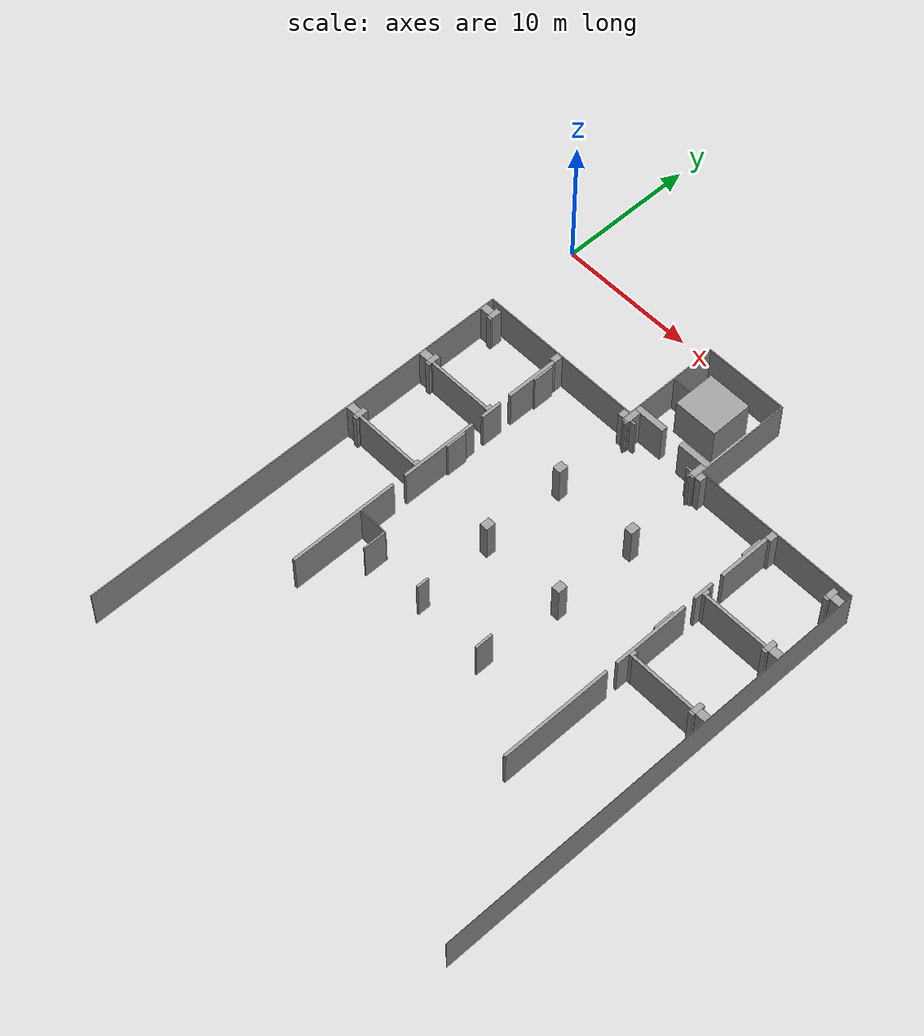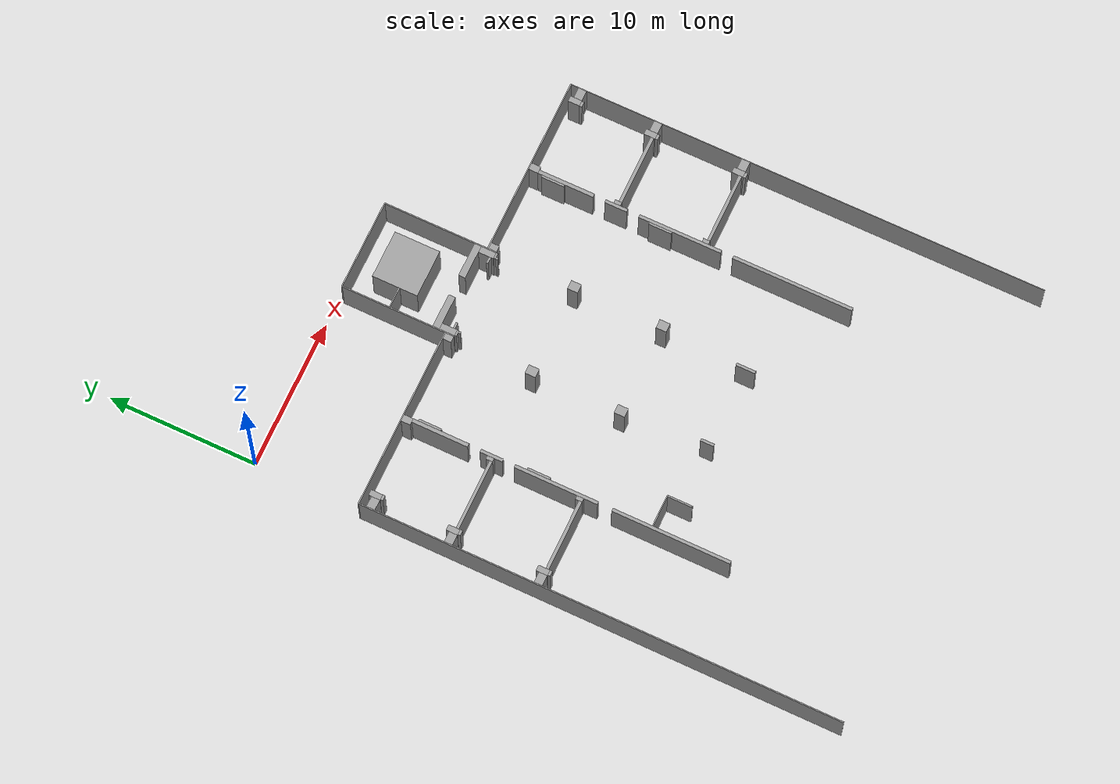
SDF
<sdf version="1.4">
 <model name="Bauman">
  <static>1</static>
  <link name="Wall_0">
   <collision name="Wall_0_Collision">
    <geometry><box><size>6.17750 0.07060 3.00000</size></box></geometry>
    <pose>15.37315 -0.03530 0 0 0 0.00000</pose>
   </collision>
   <visual name="Wall_0_Visual">
    <geometry><box><size>6.17750 0.07060 3.00000</size></box></geometry>
    <material>
     <script><uri>file://media/materials/scripts/gazebo.material</uri><name>Gazebo/Grey</name></script>
    </material>
    <pose>15.37315 -0.03530 0 0 0 0.00000</pose>
   </visual>
  </link>
  <link name="Wall_1">
   <collision name="Wall_1_Collision">
    <geometry><box><size>0.07060 7.69540 3.00000</size></box></geometry>
    <pose>12.31970 -3.91830 0 0 0 0.00000</pose>
   </collision>
   <visual name="Wall_1_Visual">
    <geometry><box><size>0.07060 7.69540 3.00000</size></box></geometry>
    <material>
     <script><uri>file://media/materials/scripts/gazebo.material</uri><name>Gazebo/Grey</name></script>
    </material>
    <pose>12.31970 -3.91830 0 0 0 0.00000</pose>
   </visual>
  </link>
  <link name="Wall_2">
   <collision name="Wall_2_Collision">
    <geometry><box><size>0.07060 7.69540 3.00000</size></box></geometry>
    <pose>18.42660 -3.91830 0 0 0 0.00000</pose>
   </collision>
   <visual name="Wall_2_Visual">
    <geometry><box><size>0.07060 7.69540 3.00000</size></box></geometry>
    <material>
     <script><uri>file://media/materials/scripts/gazebo.material</uri><name>Gazebo/Grey</name></script>
    </material>
    <pose>18.42660 -3.91830 0 0 0 0.00000</pose>
   </visual>
  </link>
  <link name="Wall_3">
   <collision name="Wall_3_Collision">
    <geometry><box><size>3.24760 3.10640 3.00000</size></box></geometry>
    <pose>15.35550 -3.00050 0 0 0 0.00000</pose>
   </collision>
   <visual name="Wall_3_Visual">
    <geometry><box><size>3.24760 3.10640 3.00000</size></box></geometry>
    <material>
     <script><uri>file://media/materials/scripts/gazebo.material</uri><name>Gazebo/Grey</name></script>
    </material>
    <pose>15.35550 -3.00050 0 0 0 0.00000</pose>
   </visual>
  </link>
  <link name="Wall_4">
   <collision name="Wall_4_Collision">
    <geometry><box><size>1.37670 0.07060 3.00000</size></box></geometry>
    <pose>13.04335 -3.31820 0 0 0 0.00000</pose>
   </collision>
   <visual name="Wall_4_Visual">
    <geometry><box><size>1.37670 0.07060 3.00000</size></box></geometry>
    <material>
     <script><uri>file://media/materials/scripts/gazebo.material</uri><name>Gazebo/Grey</name></script>
    </material>
    <pose>13.04335 -3.31820 0 0 0 0.00000</pose>
   </visual>
  </link>
  <link name="Wall_5">
   <collision name="Wall_5_Collision">
    <geometry><box><size>2.29450 0.45890 3.00000</size></box></geometry>
    <pose>13.50225 -6.51285 0 0 0 0.00000</pose>
   </collision>
   <visual name="Wall_5_Visual">
    <geometry><box><size>2.29450 0.45890 3.00000</size></box></geometry>
    <material>
     <script><uri>file://media/materials/scripts/gazebo.material</uri><name>Gazebo/Grey</name></script>
    </material>
    <pose>13.50225 -6.51285 0 0 0 0.00000</pose>
   </visual>
  </link>
  <link name="Wall_6">
   <collision name="Wall_6_Collision">
    <geometry><box><size>2.32980 0.45890 3.00000</size></box></geometry>
    <pose>17.22640 -6.51285 0 0 0 0.00000</pose>
   </collision>
   <visual name="Wall_6_Visual">
    <geometry><box><size>2.32980 0.45890 3.00000</size></box></geometry>
    <material>
     <script><uri>file://media/materials/scripts/gazebo.material</uri><name>Gazebo/Grey</name></script>
    </material>
    <pose>17.22640 -6.51285 0 0 0 0.00000</pose>
   </visual>
  </link>
  <link name="Wall_7">
   <collision name="Wall_7_Collision">
    <geometry><box><size>0.42360 1.02370 3.00000</size></box></geometry>
    <pose>12.56680 -7.25415 0 0 0 0.00000</pose>
   </collision>
   <visual name="Wall_7_Visual">
    <geometry><box><size>0.42360 1.02370 3.00000</size></box></geometry>
    <material>
     <script><uri>file://media/materials/scripts/gazebo.material</uri><name>Gazebo/Grey</name></script>
    </material>
    <pose>12.56680 -7.25415 0 0 0 0.00000</pose>
   </visual>
  </link>
  <link name="Wall_8">
   <collision name="Wall_8_Collision">
    <geometry><box><size>0.42360 1.02370 3.00000</size></box></geometry>
    <pose>18.17950 -7.25415 0 0 0 0.00000</pose>
   </collision>
   <visual name="Wall_8_Visual">
    <geometry><box><size>0.42360 1.02370 3.00000</size></box></geometry>
    <material>
     <script><uri>file://media/materials/scripts/gazebo.material</uri><name>Gazebo/Grey</name></script>
    </material>
    <pose>18.17950 -7.25415 0 0 0 0.00000</pose>
   </visual>
  </link>
  <link name="Wall_9">
   <collision name="Wall_9_Collision">
    <geometry><box><size>12.28440 0.07060 3.00000</size></box></geometry>
    <pose>6.14220 -7.16590 0 0 0 0.00000</pose>
   </collision>
   <visual name="Wall_9_Visual">
    <geometry><box><size>12.28440 0.07060 3.00000</size></box></geometry>
    <material>
     <script><uri>file://media/materials/scripts/gazebo.material</uri><name>Gazebo/Grey</name></script>
    </material>
    <pose>6.14220 -7.16590 0 0 0 0.00000</pose>
   </visual>
  </link>
  <link name="Wall_10">
   <collision name="Wall_10_Collision">
    <geometry><box><size>12.21380 0.07060 3.00000</size></box></geometry>
    <pose>24.56880 -7.16590 0 0 0 0.00000</pose>
   </collision>
   <visual name="Wall_10_Visual">
    <geometry><box><size>12.21380 0.07060 3.00000</size></box></geometry>
    <material>
     <script><uri>file://media/materials/scripts/gazebo.material</uri><name>Gazebo/Grey</name></script>
    </material>
    <pose>24.56880 -7.16590 0 0 0 0.00000</pose>
   </visual>
  </link>
  <link name="Wall_11">
   <collision name="Wall_11_Collision">
    <geometry><box><size>0.07060 32.51130 3.00000</size></box></geometry>
    <pose>0.03530 -23.45685 0 0 0 0.00000</pose>
   </collision>
   <visual name="Wall_11_Visual">
    <geometry><box><size>0.07060 32.51130 3.00000</size></box></geometry>
    <material>
     <script><uri>file://media/materials/scripts/gazebo.material</uri><name>Gazebo/Grey</name></script>
    </material>
    <pose>0.03530 -23.45685 0 0 0 0.00000</pose>
   </visual>
  </link>
  <link name="Wall_12">
   <collision name="Wall_12_Collision">
    <geometry><box><size>0.45890 0.63540 3.00000</size></box></geometry>
    <pose>6.15985 -7.51890 0 0 0 0.00000</pose>
   </collision>
   <visual name="Wall_12_Visual">
    <geometry><box><size>0.45890 0.63540 3.00000</size></box></geometry>
    <material>
     <script><uri>file://media/materials/scripts/gazebo.material</uri><name>Gazebo/Grey</name></script>
    </material>
    <pose>6.15985 -7.51890 0 0 0 0.00000</pose>
   </visual>
  </link>
  <link name="Wall_13">
   <collision name="Wall_13_Collision">
    <geometry><box><size>0.42360 0.56480 3.00000</size></box></geometry>
    <pose>12.07260 -7.48360 0 0 0 0.00000</pose>
   </collision>
   <visual name="Wall_13_Visual">
    <geometry><box><size>0.42360 0.56480 3.00000</size></box></geometry>
    <material>
     <script><uri>file://media/materials/scripts/gazebo.material</uri><name>Gazebo/Grey</name></script>
    </material>
    <pose>12.07260 -7.48360 0 0 0 0.00000</pose>
   </visual>
  </link>
  <link name="Wall_14">
   <collision name="Wall_14_Collision">
    <geometry><box><size>0.42360 0.56480 3.00000</size></box></geometry>
    <pose>18.67370 -7.48360 0 0 0 0.00000</pose>
   </collision>
   <visual name="Wall_14_Visual">
    <geometry><box><size>0.42360 0.56480 3.00000</size></box></geometry>
    <material>
     <script><uri>file://media/materials/scripts/gazebo.material</uri><name>Gazebo/Grey</name></script>
    </material>
    <pose>18.67370 -7.48360 0 0 0 0.00000</pose>
   </visual>
  </link>
  <link name="Wall_15">
   <collision name="Wall_15_Collision">
    <geometry><box><size>0.45890 0.63540 3.00000</size></box></geometry>
    <pose>24.55115 -7.51890 0 0 0 0.00000</pose>
   </collision>
   <visual name="Wall_15_Visual">
    <geometry><box><size>0.45890 0.63540 3.00000</size></box></geometry>
    <material>
     <script><uri>file://media/materials/scripts/gazebo.material</uri><name>Gazebo/Grey</name></script>
    </material>
    <pose>24.55115 -7.51890 0 0 0 0.00000</pose>
   </visual>
  </link>
  <link name="Wall_16">
   <collision name="Wall_16_Collision">
    <geometry><box><size>0.03530 32.51130 3.00000</size></box></geometry>
    <pose>30.65805 -23.45685 0 0 0 0.00000</pose>
   </collision>
   <visual name="Wall_16_Visual">
    <geometry><box><size>0.03530 32.51130 3.00000</size></box></geometry>
    <material>
     <script><uri>file://media/materials/scripts/gazebo.material</uri><name>Gazebo/Grey</name></script>
    </material>
    <pose>30.65805 -23.45685 0 0 0 0.00000</pose>
   </visual>
  </link>
  <link name="Wall_17">
   <collision name="Wall_17_Collision">
    <geometry><box><size>0.38830 0.77660 3.00000</size></box></geometry>
    <pose>0.97075 -7.87190 0 0 0 0.00000</pose>
   </collision>
   <visual name="Wall_17_Visual">
    <geometry><box><size>0.38830 0.77660 3.00000</size></box></geometry>
    <material>
     <script><uri>file://media/materials/scripts/gazebo.material</uri><name>Gazebo/Grey</name></script>
    </material>
    <pose>0.97075 -7.87190 0 0 0 0.00000</pose>
   </visual>
  </link>
  <link name="Wall_18">
   <collision name="Wall_18_Collision">
    <geometry><box><size>0.42360 0.14120 3.00000</size></box></geometry>
    <pose>12.99040 -7.55420 0 0 0 0.00000</pose>
   </collision>
   <visual name="Wall_18_Visual">
    <geometry><box><size>0.42360 0.14120 3.00000</size></box></geometry>
    <material>
     <script><uri>file://media/materials/scripts/gazebo.material</uri><name>Gazebo/Grey</name></script>
    </material>
    <pose>12.99040 -7.55420 0 0 0 0.00000</pose>
   </visual>
  </link>
  <link name="Wall_19">
   <collision name="Wall_19_Collision">
    <geometry><box><size>0.42360 0.14120 3.00000</size></box></geometry>
    <pose>17.75590 -7.55420 0 0 0 0.00000</pose>
   </collision>
   <visual name="Wall_19_Visual">
    <geometry><box><size>0.42360 0.14120 3.00000</size></box></geometry>
    <material>
     <script><uri>file://media/materials/scripts/gazebo.material</uri><name>Gazebo/Grey</name></script>
    </material>
    <pose>17.75590 -7.55420 0 0 0 0.00000</pose>
   </visual>
  </link>
  <link name="Wall_20">
   <collision name="Wall_20_Collision">
    <geometry><box><size>0.38830 0.77660 3.00000</size></box></geometry>
    <pose>29.74025 -7.87190 0 0 0 0.00000</pose>
   </collision>
   <visual name="Wall_20_Visual">
    <geometry><box><size>0.38830 0.77660 3.00000</size></box></geometry>
    <material>
     <script><uri>file://media/materials/scripts/gazebo.material</uri><name>Gazebo/Grey</name></script>
    </material>
    <pose>29.74025 -7.87190 0 0 0 0.00000</pose>
   </visual>
  </link>
  <link name="Wall_21">
   <collision name="Wall_21_Collision">
    <geometry><box><size>0.70600 0.56480 3.00000</size></box></geometry>
    <pose>0.42360 -7.97780 0 0 0 0.00000</pose>
   </collision>
   <visual name="Wall_21_Visual">
    <geometry><box><size>0.70600 0.56480 3.00000</size></box></geometry>
    <material>
     <script><uri>file://media/materials/scripts/gazebo.material</uri><name>Gazebo/Grey</name></script>
    </material>
    <pose>0.42360 -7.97780 0 0 0 0.00000</pose>
   </visual>
  </link>
  <link name="Wall_22">
   <collision name="Wall_22_Collision">
    <geometry><box><size>0.70600 0.56480 3.00000</size></box></geometry>
    <pose>30.28740 -7.97780 0 0 0 0.00000</pose>
   </collision>
   <visual name="Wall_22_Visual">
    <geometry><box><size>0.70600 0.56480 3.00000</size></box></geometry>
    <material>
     <script><uri>file://media/materials/scripts/gazebo.material</uri><name>Gazebo/Grey</name></script>
    </material>
    <pose>30.28740 -7.97780 0 0 0 0.00000</pose>
   </visual>
  </link>
  <link name="Wall_23">
   <collision name="Wall_23_Collision">
    <geometry><box><size>0.38830 0.14120 3.00000</size></box></geometry>
    <pose>12.54915 -7.83660 0 0 0 0.00000</pose>
   </collision>
   <visual name="Wall_23_Visual">
    <geometry><box><size>0.38830 0.14120 3.00000</size></box></geometry>
    <material>
     <script><uri>file://media/materials/scripts/gazebo.material</uri><name>Gazebo/Grey</name></script>
    </material>
    <pose>12.54915 -7.83660 0 0 0 0.00000</pose>
   </visual>
  </link>
  <link name="Wall_24">
   <collision name="Wall_24_Collision">
    <geometry><box><size>0.38830 0.14120 3.00000</size></box></geometry>
    <pose>18.19715 -7.83660 0 0 0 0.00000</pose>
   </collision>
   <visual name="Wall_24_Visual">
    <geometry><box><size>0.38830 0.14120 3.00000</size></box></geometry>
    <material>
     <script><uri>file://media/materials/scripts/gazebo.material</uri><name>Gazebo/Grey</name></script>
    </material>
    <pose>18.19715 -7.83660 0 0 0 0.00000</pose>
   </visual>
  </link>
  <link name="Wall_25">
   <collision name="Wall_25_Collision">
    <geometry><box><size>0.24710 3.81240 3.00000</size></box></geometry>
    <pose>6.26575 -9.74280 0 0 0 0.00000</pose>
   </collision>
   <visual name="Wall_25_Visual">
    <geometry><box><size>0.24710 3.81240 3.00000</size></box></geometry>
    <material>
     <script><uri>file://media/materials/scripts/gazebo.material</uri><name>Gazebo/Grey</name></script>
    </material>
    <pose>6.26575 -9.74280 0 0 0 0.00000</pose>
   </visual>
  </link>
  <link name="Wall_26">
   <collision name="Wall_26_Collision">
    <geometry><box><size>0.24710 3.81240 3.00000</size></box></geometry>
    <pose>24.44525 -9.74280 0 0 0 0.00000</pose>
   </collision>
   <visual name="Wall_26_Visual">
    <geometry><box><size>0.24710 3.81240 3.00000</size></box></geometry>
    <material>
     <script><uri>file://media/materials/scripts/gazebo.material</uri><name>Gazebo/Grey</name></script>
    </material>
    <pose>24.44525 -9.74280 0 0 0 0.00000</pose>
   </visual>
  </link>
  <link name="Wall_27">
   <collision name="Wall_27_Collision">
    <geometry><box><size>0.14120 0.14120 3.00000</size></box></geometry>
    <pose>12.67270 -7.97780 0 0 0 0.00000</pose>
   </collision>
   <visual name="Wall_27_Visual">
    <geometry><box><size>0.14120 0.14120 3.00000</size></box></geometry>
    <material>
     <script><uri>file://media/materials/scripts/gazebo.material</uri><name>Gazebo/Grey</name></script>
    </material>
    <pose>12.67270 -7.97780 0 0 0 0.00000</pose>
   </visual>
  </link>
  <link name="Wall_28">
   <collision name="Wall_28_Collision">
    <geometry><box><size>0.14120 0.14120 3.00000</size></box></geometry>
    <pose>18.07360 -7.97780 0 0 0 0.00000</pose>
   </collision>
   <visual name="Wall_28_Visual">
    <geometry><box><size>0.14120 0.14120 3.00000</size></box></geometry>
    <material>
     <script><uri>file://media/materials/scripts/gazebo.material</uri><name>Gazebo/Grey</name></script>
    </material>
    <pose>18.07360 -7.97780 0 0 0 0.00000</pose>
   </visual>
  </link>
  <link name="Wall_29">
   <collision name="Wall_29_Collision">
    <geometry><box><size>0.14120 1.55320 3.00000</size></box></geometry>
    <pose>6.45990 -8.93090 0 0 0 0.00000</pose>
   </collision>
   <visual name="Wall_29_Visual">
    <geometry><box><size>0.14120 1.55320 3.00000</size></box></geometry>
    <material>
     <script><uri>file://media/materials/scripts/gazebo.material</uri><name>Gazebo/Grey</name></script>
    </material>
    <pose>6.45990 -8.93090 0 0 0 0.00000</pose>
   </visual>
  </link>
  <link name="Wall_30">
   <collision name="Wall_30_Collision">
    <geometry><box><size>0.14120 1.55320 3.00000</size></box></geometry>
    <pose>24.25110 -8.93090 0 0 0 0.00000</pose>
   </collision>
   <visual name="Wall_30_Visual">
    <geometry><box><size>0.14120 1.55320 3.00000</size></box></geometry>
    <material>
     <script><uri>file://media/materials/scripts/gazebo.material</uri><name>Gazebo/Grey</name></script>
    </material>
    <pose>24.25110 -8.93090 0 0 0 0.00000</pose>
   </visual>
  </link>
  <link name="Wall_31">
   <collision name="Wall_31_Collision">
    <geometry><box><size>0.35300 0.17650 3.00000</size></box></geometry>
    <pose>0.98840 -8.34845 0 0 0 0.00000</pose>
   </collision>
   <visual name="Wall_31_Visual">
    <geometry><box><size>0.35300 0.17650 3.00000</size></box></geometry>
    <material>
     <script><uri>file://media/materials/scripts/gazebo.material</uri><name>Gazebo/Grey</name></script>
    </material>
    <pose>0.98840 -8.34845 0 0 0 0.00000</pose>
   </visual>
  </link>
  <link name="Wall_32">
   <collision name="Wall_32_Collision">
    <geometry><box><size>0.35300 0.17650 3.00000</size></box></geometry>
    <pose>29.72260 -8.34845 0 0 0 0.00000</pose>
   </collision>
   <visual name="Wall_32_Visual">
    <geometry><box><size>0.35300 0.17650 3.00000</size></box></geometry>
    <material>
     <script><uri>file://media/materials/scripts/gazebo.material</uri><name>Gazebo/Grey</name></script>
    </material>
    <pose>29.72260 -8.34845 0 0 0 0.00000</pose>
   </visual>
  </link>
  <link name="Wall_33">
   <collision name="Wall_33_Collision">
    <geometry><box><size>0.21180 1.51790 3.00000</size></box></geometry>
    <pose>6.28340 -13.21985 0 0 0 0.00000</pose>
   </collision>
   <visual name="Wall_33_Visual">
    <geometry><box><size>0.21180 1.51790 3.00000</size></box></geometry>
    <material>
     <script><uri>file://media/materials/scripts/gazebo.material</uri><name>Gazebo/Grey</name></script>
    </material>
    <pose>6.28340 -13.21985 0 0 0 0.00000</pose>
   </visual>
  </link>
  <link name="Wall_34">
   <collision name="Wall_34_Collision">
    <geometry><box><size>0.21180 1.51790 3.00000</size></box></geometry>
    <pose>24.42760 -13.21985 0 0 0 0.00000</pose>
   </collision>
   <visual name="Wall_34_Visual">
    <geometry><box><size>0.21180 1.51790 3.00000</size></box></geometry>
    <material>
     <script><uri>file://media/materials/scripts/gazebo.material</uri><name>Gazebo/Grey</name></script>
    </material>
    <pose>24.42760 -13.21985 0 0 0 0.00000</pose>
   </visual>
  </link>
  <link name="Wall_35">
   <collision name="Wall_35_Collision">
    <geometry><box><size>0.38830 0.77660 3.00000</size></box></geometry>
    <pose>0.97075 -13.13160 0 0 0 0.00000</pose>
   </collision>
   <visual name="Wall_35_Visual">
    <geometry><box><size>0.38830 0.77660 3.00000</size></box></geometry>
    <material>
     <script><uri>file://media/materials/scripts/gazebo.material</uri><name>Gazebo/Grey</name></script>
    </material>
    <pose>0.97075 -13.13160 0 0 0 0.00000</pose>
   </visual>
  </link>
  <link name="Wall_36">
   <collision name="Wall_36_Collision">
    <geometry><box><size>0.38830 0.77660 3.00000</size></box></geometry>
    <pose>29.74025 -13.13160 0 0 0 0.00000</pose>
   </collision>
   <visual name="Wall_36_Visual">
    <geometry><box><size>0.38830 0.77660 3.00000</size></box></geometry>
    <material>
     <script><uri>file://media/materials/scripts/gazebo.material</uri><name>Gazebo/Grey</name></script>
    </material>
    <pose>29.74025 -13.13160 0 0 0 0.00000</pose>
   </visual>
  </link>
  <link name="Wall_37">
   <collision name="Wall_37_Collision">
    <geometry><box><size>0.60010 0.70600 3.00000</size></box></geometry>
    <pose>12.30205 -13.13160 0 0 0 0.00000</pose>
   </collision>
   <visual name="Wall_37_Visual">
    <geometry><box><size>0.60010 0.70600 3.00000</size></box></geometry>
    <material>
     <script><uri>file://media/materials/scripts/gazebo.material</uri><name>Gazebo/Grey</name></script>
    </material>
    <pose>12.30205 -13.13160 0 0 0 0.00000</pose>
   </visual>
  </link>
  <link name="Wall_38">
   <collision name="Wall_38_Collision">
    <geometry><box><size>0.60010 0.70600 3.00000</size></box></geometry>
    <pose>18.44425 -13.13160 0 0 0 0.00000</pose>
   </collision>
   <visual name="Wall_38_Visual">
    <geometry><box><size>0.60010 0.70600 3.00000</size></box></geometry>
    <material>
     <script><uri>file://media/materials/scripts/gazebo.material</uri><name>Gazebo/Grey</name></script>
    </material>
    <pose>18.44425 -13.13160 0 0 0 0.00000</pose>
   </visual>
  </link>
  <link name="Wall_39">
   <collision name="Wall_39_Collision">
    <geometry><box><size>0.70600 0.56480 3.00000</size></box></geometry>
    <pose>0.42360 -13.23750 0 0 0 0.00000</pose>
   </collision>
   <visual name="Wall_39_Visual">
    <geometry><box><size>0.70600 0.56480 3.00000</size></box></geometry>
    <material>
     <script><uri>file://media/materials/scripts/gazebo.material</uri><name>Gazebo/Grey</name></script>
    </material>
    <pose>0.42360 -13.23750 0 0 0 0.00000</pose>
   </visual>
  </link>
  <link name="Wall_40">
   <collision name="Wall_40_Collision">
    <geometry><box><size>0.70600 0.56480 3.00000</size></box></geometry>
    <pose>30.28740 -13.23750 0 0 0 0.00000</pose>
   </collision>
   <visual name="Wall_40_Visual">
    <geometry><box><size>0.70600 0.56480 3.00000</size></box></geometry>
    <material>
     <script><uri>file://media/materials/scripts/gazebo.material</uri><name>Gazebo/Grey</name></script>
    </material>
    <pose>30.28740 -13.23750 0 0 0 0.00000</pose>
   </visual>
  </link>
  <link name="Wall_41">
   <collision name="Wall_41_Collision">
    <geometry><box><size>0.24710 0.45890 3.00000</size></box></geometry>
    <pose>6.05395 -13.21985 0 0 0 0.00000</pose>
   </collision>
   <visual name="Wall_41_Visual">
    <geometry><box><size>0.24710 0.45890 3.00000</size></box></geometry>
    <material>
     <script><uri>file://media/materials/scripts/gazebo.material</uri><name>Gazebo/Grey</name></script>
    </material>
    <pose>6.05395 -13.21985 0 0 0 0.00000</pose>
   </visual>
  </link>
  <link name="Wall_42">
   <collision name="Wall_42_Collision">
    <geometry><box><size>0.24710 0.45890 3.00000</size></box></geometry>
    <pose>24.65705 -13.21985 0 0 0 0.00000</pose>
   </collision>
   <visual name="Wall_42_Visual">
    <geometry><box><size>0.24710 0.45890 3.00000</size></box></geometry>
    <material>
     <script><uri>file://media/materials/scripts/gazebo.material</uri><name>Gazebo/Grey</name></script>
    </material>
    <pose>24.65705 -13.21985 0 0 0 0.00000</pose>
   </visual>
  </link>
  <link name="Wall_43">
   <collision name="Wall_43_Collision">
    <geometry><box><size>4.76550 0.21180 3.00000</size></box></geometry>
    <pose>3.54765 -13.34340 0 0 0 0.00000</pose>
   </collision>
   <visual name="Wall_43_Visual">
    <geometry><box><size>4.76550 0.21180 3.00000</size></box></geometry>
    <material>
     <script><uri>file://media/materials/scripts/gazebo.material</uri><name>Gazebo/Grey</name></script>
    </material>
    <pose>3.54765 -13.34340 0 0 0 0.00000</pose>
   </visual>
  </link>
  <link name="Wall_44">
   <collision name="Wall_44_Collision">
    <geometry><box><size>4.76550 0.21180 3.00000</size></box></geometry>
    <pose>27.16335 -13.34340 0 0 0 0.00000</pose>
   </collision>
   <visual name="Wall_44_Visual">
    <geometry><box><size>4.76550 0.21180 3.00000</size></box></geometry>
    <material>
     <script><uri>file://media/materials/scripts/gazebo.material</uri><name>Gazebo/Grey</name></script>
    </material>
    <pose>27.16335 -13.34340 0 0 0 0.00000</pose>
   </visual>
  </link>
  <link name="Wall_45">
   <collision name="Wall_45_Collision">
    <geometry><box><size>0.35300 0.17650 3.00000</size></box></geometry>
    <pose>0.98840 -13.60815 0 0 0 0.00000</pose>
   </collision>
   <visual name="Wall_45_Visual">
    <geometry><box><size>0.35300 0.17650 3.00000</size></box></geometry>
    <material>
     <script><uri>file://media/materials/scripts/gazebo.material</uri><name>Gazebo/Grey</name></script>
    </material>
    <pose>0.98840 -13.60815 0 0 0 0.00000</pose>
   </visual>
  </link>
  <link name="Wall_46">
   <collision name="Wall_46_Collision">
    <geometry><box><size>0.35300 0.17650 3.00000</size></box></geometry>
    <pose>29.72260 -13.60815 0 0 0 0.00000</pose>
   </collision>
   <visual name="Wall_46_Visual">
    <geometry><box><size>0.35300 0.17650 3.00000</size></box></geometry>
    <material>
     <script><uri>file://media/materials/scripts/gazebo.material</uri><name>Gazebo/Grey</name></script>
    </material>
    <pose>29.72260 -13.60815 0 0 0 0.00000</pose>
   </visual>
  </link>
  <link name="Wall_47">
   <collision name="Wall_47_Collision">
    <geometry><box><size>0.21180 5.64800 3.00000</size></box></geometry>
    <pose>6.28340 -17.61470 0 0 0 0.00000</pose>
   </collision>
   <visual name="Wall_47_Visual">
    <geometry><box><size>0.21180 5.64800 3.00000</size></box></geometry>
    <material>
     <script><uri>file://media/materials/scripts/gazebo.material</uri><name>Gazebo/Grey</name></script>
    </material>
    <pose>6.28340 -17.61470 0 0 0 0.00000</pose>
   </visual>
  </link>
  <link name="Wall_48">
   <collision name="Wall_48_Collision">
    <geometry><box><size>0.21180 5.64800 3.00000</size></box></geometry>
    <pose>24.42760 -17.61470 0 0 0 0.00000</pose>
   </collision>
   <visual name="Wall_48_Visual">
    <geometry><box><size>0.21180 5.64800 3.00000</size></box></geometry>
    <material>
     <script><uri>file://media/materials/scripts/gazebo.material</uri><name>Gazebo/Grey</name></script>
    </material>
    <pose>24.42760 -17.61470 0 0 0 0.00000</pose>
   </visual>
  </link>
  <link name="Wall_49">
   <collision name="Wall_49_Collision">
    <geometry><box><size>0.14120 1.55320 3.00000</size></box></geometry>
    <pose>6.45990 -16.34390 0 0 0 0.00000</pose>
   </collision>
   <visual name="Wall_49_Visual">
    <geometry><box><size>0.14120 1.55320 3.00000</size></box></geometry>
    <material>
     <script><uri>file://media/materials/scripts/gazebo.material</uri><name>Gazebo/Grey</name></script>
    </material>
    <pose>6.45990 -16.34390 0 0 0 0.00000</pose>
   </visual>
  </link>
  <link name="Wall_50">
   <collision name="Wall_50_Collision">
    <geometry><box><size>0.14120 1.55320 3.00000</size></box></geometry>
    <pose>24.25110 -16.34390 0 0 0 0.00000</pose>
   </collision>
   <visual name="Wall_50_Visual">
    <geometry><box><size>0.14120 1.55320 3.00000</size></box></geometry>
    <material>
     <script><uri>file://media/materials/scripts/gazebo.material</uri><name>Gazebo/Grey</name></script>
    </material>
    <pose>24.25110 -16.34390 0 0 0 0.00000</pose>
   </visual>
  </link>
  <link name="Wall_51">
   <collision name="Wall_51_Collision">
    <geometry><box><size>0.38830 0.77660 3.00000</size></box></geometry>
    <pose>0.97075 -19.20320 0 0 0 0.00000</pose>
   </collision>
   <visual name="Wall_51_Visual">
    <geometry><box><size>0.38830 0.77660 3.00000</size></box></geometry>
    <material>
     <script><uri>file://media/materials/scripts/gazebo.material</uri><name>Gazebo/Grey</name></script>
    </material>
    <pose>0.97075 -19.20320 0 0 0 0.00000</pose>
   </visual>
  </link>
  <link name="Wall_52">
   <collision name="Wall_52_Collision">
    <geometry><box><size>0.38830 0.77660 3.00000</size></box></geometry>
    <pose>29.74025 -19.20320 0 0 0 0.00000</pose>
   </collision>
   <visual name="Wall_52_Visual">
    <geometry><box><size>0.38830 0.77660 3.00000</size></box></geometry>
    <material>
     <script><uri>file://media/materials/scripts/gazebo.material</uri><name>Gazebo/Grey</name></script>
    </material>
    <pose>29.74025 -19.20320 0 0 0 0.00000</pose>
   </visual>
  </link>
  <link name="Wall_53">
   <collision name="Wall_53_Collision">
    <geometry><box><size>0.60010 0.70600 3.00000</size></box></geometry>
    <pose>12.30205 -19.20320 0 0 0 0.00000</pose>
   </collision>
   <visual name="Wall_53_Visual">
    <geometry><box><size>0.60010 0.70600 3.00000</size></box></geometry>
    <material>
     <script><uri>file://media/materials/scripts/gazebo.material</uri><name>Gazebo/Grey</name></script>
    </material>
    <pose>12.30205 -19.20320 0 0 0 0.00000</pose>
   </visual>
  </link>
  <link name="Wall_54">
   <collision name="Wall_54_Collision">
    <geometry><box><size>0.60010 0.70600 3.00000</size></box></geometry>
    <pose>18.44425 -19.20320 0 0 0 0.00000</pose>
   </collision>
   <visual name="Wall_54_Visual">
    <geometry><box><size>0.60010 0.70600 3.00000</size></box></geometry>
    <material>
     <script><uri>file://media/materials/scripts/gazebo.material</uri><name>Gazebo/Grey</name></script>
    </material>
    <pose>18.44425 -19.20320 0 0 0 0.00000</pose>
   </visual>
  </link>
  <link name="Wall_55">
   <collision name="Wall_55_Collision">
    <geometry><box><size>0.70600 0.56480 3.00000</size></box></geometry>
    <pose>0.42360 -19.30910 0 0 0 0.00000</pose>
   </collision>
   <visual name="Wall_55_Visual">
    <geometry><box><size>0.70600 0.56480 3.00000</size></box></geometry>
    <material>
     <script><uri>file://media/materials/scripts/gazebo.material</uri><name>Gazebo/Grey</name></script>
    </material>
    <pose>0.42360 -19.30910 0 0 0 0.00000</pose>
   </visual>
  </link>
  <link name="Wall_56">
   <collision name="Wall_56_Collision">
    <geometry><box><size>0.70600 0.56480 3.00000</size></box></geometry>
    <pose>30.28740 -19.30910 0 0 0 0.00000</pose>
   </collision>
   <visual name="Wall_56_Visual">
    <geometry><box><size>0.70600 0.56480 3.00000</size></box></geometry>
    <material>
     <script><uri>file://media/materials/scripts/gazebo.material</uri><name>Gazebo/Grey</name></script>
    </material>
    <pose>30.28740 -19.30910 0 0 0 0.00000</pose>
   </visual>
  </link>
  <link name="Wall_57">
   <collision name="Wall_57_Collision">
    <geometry><box><size>0.24710 0.45890 3.00000</size></box></geometry>
    <pose>6.05395 -19.29145 0 0 0 0.00000</pose>
   </collision>
   <visual name="Wall_57_Visual">
    <geometry><box><size>0.24710 0.45890 3.00000</size></box></geometry>
    <material>
     <script><uri>file://media/materials/scripts/gazebo.material</uri><name>Gazebo/Grey</name></script>
    </material>
    <pose>6.05395 -19.29145 0 0 0 0.00000</pose>
   </visual>
  </link>
  <link name="Wall_58">
   <collision name="Wall_58_Collision">
    <geometry><box><size>0.24710 0.45890 3.00000</size></box></geometry>
    <pose>24.65705 -19.29145 0 0 0 0.00000</pose>
   </collision>
   <visual name="Wall_58_Visual">
    <geometry><box><size>0.24710 0.45890 3.00000</size></box></geometry>
    <material>
     <script><uri>file://media/materials/scripts/gazebo.material</uri><name>Gazebo/Grey</name></script>
    </material>
    <pose>24.65705 -19.29145 0 0 0 0.00000</pose>
   </visual>
  </link>
  <link name="Wall_59">
   <collision name="Wall_59_Collision">
    <geometry><box><size>4.76550 0.21180 3.00000</size></box></geometry>
    <pose>3.54765 -19.41500 0 0 0 0.00000</pose>
   </collision>
   <visual name="Wall_59_Visual">
    <geometry><box><size>4.76550 0.21180 3.00000</size></box></geometry>
    <material>
     <script><uri>file://media/materials/scripts/gazebo.material</uri><name>Gazebo/Grey</name></script>
    </material>
    <pose>3.54765 -19.41500 0 0 0 0.00000</pose>
   </visual>
  </link>
  <link name="Wall_60">
   <collision name="Wall_60_Collision">
    <geometry><box><size>4.76550 0.21180 3.00000</size></box></geometry>
    <pose>27.16335 -19.41500 0 0 0 0.00000</pose>
   </collision>
   <visual name="Wall_60_Visual">
    <geometry><box><size>4.76550 0.21180 3.00000</size></box></geometry>
    <material>
     <script><uri>file://media/materials/scripts/gazebo.material</uri><name>Gazebo/Grey</name></script>
    </material>
    <pose>27.16335 -19.41500 0 0 0 0.00000</pose>
   </visual>
  </link>
  <link name="Wall_61">
   <collision name="Wall_61_Collision">
    <geometry><box><size>0.35300 0.17650 3.00000</size></box></geometry>
    <pose>0.98840 -19.67975 0 0 0 0.00000</pose>
   </collision>
   <visual name="Wall_61_Visual">
    <geometry><box><size>0.35300 0.17650 3.00000</size></box></geometry>
    <material>
     <script><uri>file://media/materials/scripts/gazebo.material</uri><name>Gazebo/Grey</name></script>
    </material>
    <pose>0.98840 -19.67975 0 0 0 0.00000</pose>
   </visual>
  </link>
  <link name="Wall_62">
   <collision name="Wall_62_Collision">
    <geometry><box><size>0.35300 0.17650 3.00000</size></box></geometry>
    <pose>29.72260 -19.67975 0 0 0 0.00000</pose>
   </collision>
   <visual name="Wall_62_Visual">
    <geometry><box><size>0.35300 0.17650 3.00000</size></box></geometry>
    <material>
     <script><uri>file://media/materials/scripts/gazebo.material</uri><name>Gazebo/Grey</name></script>
    </material>
    <pose>29.72260 -19.67975 0 0 0 0.00000</pose>
   </visual>
  </link>
  <link name="Wall_63">
   <collision name="Wall_63_Collision">
    <geometry><box><size>0.21180 8.15430 3.00000</size></box></geometry>
    <pose>24.42760 -25.32775 0 0 0 0.00000</pose>
   </collision>
   <visual name="Wall_63_Visual">
    <geometry><box><size>0.21180 8.15430 3.00000</size></box></geometry>
    <material>
     <script><uri>file://media/materials/scripts/gazebo.material</uri><name>Gazebo/Grey</name></script>
    </material>
    <pose>24.42760 -25.32775 0 0 0 0.00000</pose>
   </visual>
  </link>
  <link name="Wall_64">
   <collision name="Wall_64_Collision">
    <geometry><box><size>0.21180 7.97780 3.00000</size></box></geometry>
    <pose>6.28340 -25.38070 0 0 0 0.00000</pose>
   </collision>
   <visual name="Wall_64_Visual">
    <geometry><box><size>0.21180 7.97780 3.00000</size></box></geometry>
    <material>
     <script><uri>file://media/materials/scripts/gazebo.material</uri><name>Gazebo/Grey</name></script>
    </material>
    <pose>6.28340 -25.38070 0 0 0 0.00000</pose>
   </visual>
  </link>
  <link name="Wall_65">
   <collision name="Wall_65_Collision">
    <geometry><box><size>2.18860 0.07060 3.00000</size></box></geometry>
    <pose>7.48360 -24.07460 0 0 0 0.00000</pose>
   </collision>
   <visual name="Wall_65_Visual">
    <geometry><box><size>2.18860 0.07060 3.00000</size></box></geometry>
    <material>
     <script><uri>file://media/materials/scripts/gazebo.material</uri><name>Gazebo/Grey</name></script>
    </material>
    <pose>7.48360 -24.07460 0 0 0 0.00000</pose>
   </visual>
  </link>
  <link name="Wall_66">
   <collision name="Wall_66_Collision">
    <geometry><box><size>0.10590 1.65910 3.00000</size></box></geometry>
    <pose>8.52495 -24.93945 0 0 0 0.00000</pose>
   </collision>
   <visual name="Wall_66_Visual">
    <geometry><box><size>0.10590 1.65910 3.00000</size></box></geometry>
    <material>
     <script><uri>file://media/materials/scripts/gazebo.material</uri><name>Gazebo/Grey</name></script>
    </material>
    <pose>8.52495 -24.93945 0 0 0 0.00000</pose>
   </visual>
  </link>
  <link name="Wall_67">
   <collision name="Wall_67_Collision">
    <geometry><box><size>0.17650 1.30610 3.00000</size></box></geometry>
    <pose>18.09125 -25.01005 0 0 0 0.00000</pose>
   </collision>
   <visual name="Wall_67_Visual">
    <geometry><box><size>0.17650 1.30610 3.00000</size></box></geometry>
    <material>
     <script><uri>file://media/materials/scripts/gazebo.material</uri><name>Gazebo/Grey</name></script>
    </material>
    <pose>18.09125 -25.01005 0 0 0 0.00000</pose>
   </visual>
  </link>
  <link name="Wall_68">
   <collision name="Wall_68_Collision">
    <geometry><box><size>0.17650 0.88250 3.00000</size></box></geometry>
    <pose>12.69035 -24.86885 0 0 0 0.00000</pose>
   </collision>
   <visual name="Wall_68_Visual">
    <geometry><box><size>0.17650 0.88250 3.00000</size></box></geometry>
    <material>
     <script><uri>file://media/materials/scripts/gazebo.material</uri><name>Gazebo/Grey</name></script>
    </material>
    <pose>12.69035 -24.86885 0 0 0 0.00000</pose>
   </visual>
  </link>
 </model>
</sdf>
